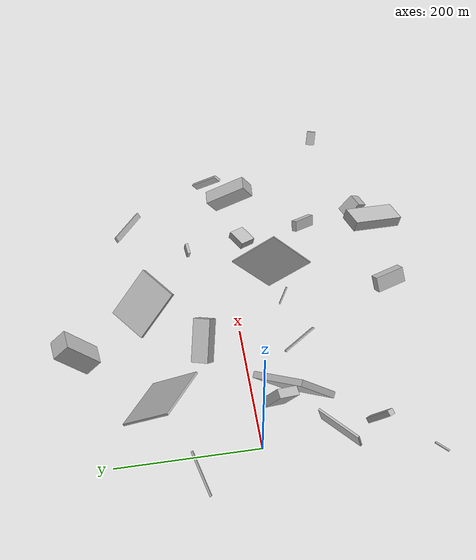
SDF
<sdf version="1.6">
 <world name="default">
  <scene>
   <sky><clouds><speed>12</speed></clouds></sky>
   <ambient>0.4 0.4 0.4 1</ambient>
   <background>0.7 0.7 0.7 1</background>
   <shadows>1</shadows>
  </scene>
  <gravity>0 0 -9.8066</gravity>
  <magnetic_field>6e-06 2.3e-05 -4.2e-05</magnetic_field>
  <physics default="0" name="default_physics" type="ode">
   <ode>
    <solver>
     <type>quick</type>
     <iters>10</iters>
     <sor>1.0</sor>
     <use_dynamic_moi_rescaling>0</use_dynamic_moi_rescaling>
    </solver>
    <constraints>
     <cfm>0</cfm>
     <erp>0.2</erp>
     <contact_max_correcting_vel>100</contact_max_correcting_vel>
     <contact_surface_layer>0.001</contact_surface_layer>
    </constraints>
   </ode>
   <max_step_size>0.004</max_step_size>
   <real_time_factor>1</real_time_factor>
   <real_time_update_rate>250</real_time_update_rate>
  </physics>
  <light name="sun" type="directional">
   <pose>0 0 10 0 0 0</pose>
   <diffuse>0.8 0.8 0.8 1</diffuse>
   <specular>0.2 0.2 0.2 1</specular>
   <attenuation>
    <range>1000</range>
    <constant>0.9</constant>
    <linear>0.01</linear>
    <quadratic>0.001</quadratic>
   </attenuation>
   <direction>-0.5 0.1 -0.9</direction>
  </light>
  <model name="building_1">
   <static>0</static>
   <pose>160.1165467990206 68.87043539688312 46.89103749658003 1.3285939353159029 -0.7301867774618009 -0.22986514630853305</pose>
   <link name="link">
    <gravity>0</gravity>
    <pose>0 0 12.0 0 0 0</pose>
    <collision name="collision"><geometry><box><size>61 26 24</size></box></geometry></collision>
    <visual name="visual">
     <cast_shadows>0</cast_shadows>
     <geometry><box><size>61 26 24</size></box></geometry>
     <material>
      <script>
       <uri>model://HANNAS_wall/materials/scripts</uri>
       <uri>model://HANNAS_wall/materials/textures</uri>
       <name>vrc/HANNAS_wall</name>
      </script>
     </material>
    </visual>
   </link>
  </model>
  <model name="building_2">
   <static>0</static>
   <pose>279.2148079015359 -201.69801258769922 115.26990280224206 -0.05930426984756887 0.2903821086181168 -1.2845892986862015</pose>
   <link name="link">
    <gravity>0</gravity>
    <pose>0 0 7.5 0 0 0</pose>
    <collision name="collision"><geometry><box><size>77 31 15</size></box></geometry></collision>
    <visual name="visual">
     <cast_shadows>0</cast_shadows>
     <geometry><box><size>77 31 15</size></box></geometry>
     <material>
      <script>
       <uri>model://HANNAS_wall/materials/scripts</uri>
       <uri>model://HANNAS_wall/materials/textures</uri>
       <name>vrc/HANNAS_wall</name>
      </script>
     </material>
    </visual>
   </link>
  </model>
  <model name="building_3">
   <static>0</static>
   <pose>159.5203059757197 -78.49606006658985 18.749224850001085 2.2932887428029067 -0.2470674348100772 -1.0514983323943283</pose>
   <link name="link">
    <gravity>0</gravity>
    <pose>0 0 1.0 0 0 0</pose>
    <collision name="collision"><geometry><box><size>53 8 2</size></box></geometry></collision>
    <visual name="visual">
     <cast_shadows>0</cast_shadows>
     <geometry><box><size>53 8 2</size></box></geometry>
     <material>
      <script>
       <uri>model://HANNAS_wall/materials/scripts</uri>
       <uri>model://HANNAS_wall/materials/textures</uri>
       <name>vrc/HANNAS_wall</name>
      </script>
     </material>
    </visual>
   </link>
  </model>
  <model name="building_4">
   <static>0</static>
   <pose>277.0380066606314 108.08995951245579 40.6746956114759 -2.3139507642230135 -0.19611090489832625 0.7014184748416624</pose>
   <link name="link">
    <gravity>0</gravity>
    <pose>0 0 40.0 0 0 0</pose>
    <collision name="collision"><geometry><box><size>59 7 80</size></box></geometry></collision>
    <visual name="visual">
     <cast_shadows>0</cast_shadows>
     <geometry><box><size>59 7 80</size></box></geometry>
     <material>
      <script>
       <uri>model://HANNAS_wall/materials/scripts</uri>
       <uri>model://HANNAS_wall/materials/textures</uri>
       <name>vrc/HANNAS_wall</name>
      </script>
     </material>
    </visual>
   </link>
  </model>
  <model name="building_5">
   <static>0</static>
   <pose>365.73317975480563 -18.665505776969084 13.070392997884396 -1.7748417487516686 0.07115214827995058 -2.6054754515912246</pose>
   <link name="link">
    <gravity>0</gravity>
    <pose>0 0 12.5 0 0 0</pose>
    <collision name="collision"><geometry><box><size>29 11 25</size></box></geometry></collision>
    <visual name="visual">
     <cast_shadows>0</cast_shadows>
     <geometry><box><size>29 11 25</size></box></geometry>
     <material>
      <script>
       <uri>model://HANNAS_wall/materials/scripts</uri>
       <uri>model://HANNAS_wall/materials/textures</uri>
       <name>vrc/HANNAS_wall</name>
      </script>
     </material>
    </visual>
   </link>
  </model>
  <model name="building_6">
   <static>0</static>
   <pose>458.7847118919206 -21.70031995184931 33.27693621267956 1.788165845553043 -0.5519019244276538 -1.7569297192931248</pose>
   <link name="link">
    <gravity>0</gravity>
    <pose>0 0 10.5 0 0 0</pose>
    <collision name="collision"><geometry><box><size>67 28 21</size></box></geometry></collision>
    <visual name="visual">
     <cast_shadows>0</cast_shadows>
     <geometry><box><size>67 28 21</size></box></geometry>
     <material>
      <script>
       <uri>model://HANNAS_wall/materials/scripts</uri>
       <uri>model://HANNAS_wall/materials/textures</uri>
       <name>vrc/HANNAS_wall</name>
      </script>
     </material>
    </visual>
   </link>
  </model>
  <model name="building_7">
   <static>0</static>
   <pose>-40.876533607817 86.29795836651692 28.377055840085532 -2.5025358156552797 0.8016722359618489 -0.7808692468582902</pose>
   <link name="link">
    <gravity>0</gravity>
    <pose>0 0 1.5 0 0 0</pose>
    <collision name="collision"><geometry><box><size>2 63 3</size></box></geometry></collision>
    <visual name="visual">
     <cast_shadows>0</cast_shadows>
     <geometry><box><size>2 63 3</size></box></geometry>
     <material>
      <script>
       <uri>model://HANNAS_wall/materials/scripts</uri>
       <uri>model://HANNAS_wall/materials/textures</uri>
       <name>vrc/HANNAS_wall</name>
      </script>
     </material>
    </visual>
   </link>
  </model>
  <model name="building_8">
   <static>0</static>
   <pose>353.50089481447424 59.31059171152511 16.964097756739513 1.5940710545189296 -0.4418369607286994 0.15842009398209242</pose>
   <link name="link">
    <gravity>0</gravity>
    <pose>0 0 2.0 0 0 0</pose>
    <collision name="collision"><geometry><box><size>16 19 4</size></box></geometry></collision>
    <visual name="visual">
     <cast_shadows>0</cast_shadows>
     <geometry><box><size>16 19 4</size></box></geometry>
     <material>
      <script>
       <uri>model://HANNAS_wall/materials/scripts</uri>
       <uri>model://HANNAS_wall/materials/textures</uri>
       <name>vrc/HANNAS_wall</name>
      </script>
     </material>
    </visual>
   </link>
  </model>
  <model name="building_9">
   <static>0</static>
   <pose>311.8666914323281 -173.74385039163144 103.67761383684056 0.7176548363751946 -0.23872495111786582 0.49191703901377143</pose>
   <link name="link">
    <gravity>0</gravity>
    <pose>0 0 13.5 0 0 0</pose>
    <collision name="collision"><geometry><box><size>18 24 27</size></box></geometry></collision>
    <visual name="visual">
     <cast_shadows>0</cast_shadows>
     <geometry><box><size>18 24 27</size></box></geometry>
     <material>
      <script>
       <uri>model://HANNAS_wall/materials/scripts</uri>
       <uri>model://HANNAS_wall/materials/textures</uri>
       <name>vrc/HANNAS_wall</name>
      </script>
     </material>
    </visual>
   </link>
  </model>
  <model name="building_10">
   <static>0</static>
   <pose>245.79744965909856 -71.14905408632073 14.197179085214351 0.5143165054649868 -0.8328007508449095 -0.7433514378001362</pose>
   <link name="link">
    <gravity>0</gravity>
    <pose>0 0 1.5 0 0 0</pose>
    <collision name="collision"><geometry><box><size>27 2 3</size></box></geometry></collision>
    <visual name="visual">
     <cast_shadows>0</cast_shadows>
     <geometry><box><size>27 2 3</size></box></geometry>
     <material>
      <script>
       <uri>model://HANNAS_wall/materials/scripts</uri>
       <uri>model://HANNAS_wall/materials/textures</uri>
       <name>vrc/HANNAS_wall</name>
      </script>
     </material>
    </visual>
   </link>
  </model>
  <model name="building_11">
   <static>0</static>
   <pose>159.4988535581566 244.30072497581358 40.120761537084675 -0.100432081249928 0.8556353628195631 -1.5304868915395726</pose>
   <link name="link">
    <gravity>0</gravity>
    <pose>0 0 14.0 0 0 0</pose>
    <collision name="collision"><geometry><box><size>61 30 28</size></box></geometry></collision>
    <visual name="visual">
     <cast_shadows>0</cast_shadows>
     <geometry><box><size>61 30 28</size></box></geometry>
     <material>
      <script>
       <uri>model://HANNAS_wall/materials/scripts</uri>
       <uri>model://HANNAS_wall/materials/textures</uri>
       <name>vrc/HANNAS_wall</name>
      </script>
     </material>
    </visual>
   </link>
  </model>
  <model name="building_12">
   <static>0</static>
   <pose>-51.779734609221066 -228.33852687330676 31.546906091834444 2.696736357048746 -0.20183266006919656 0.8779202080913617</pose>
   <link name="link">
    <gravity>0</gravity>
    <pose>0 0 4.5 0 0 0</pose>
    <collision name="collision"><geometry><box><size>21 2 9</size></box></geometry></collision>
    <visual name="visual">
     <cast_shadows>0</cast_shadows>
     <geometry><box><size>21 2 9</size></box></geometry>
     <material>
      <script>
       <uri>model://HANNAS_wall/materials/scripts</uri>
       <uri>model://HANNAS_wall/materials/textures</uri>
       <name>vrc/HANNAS_wall</name>
      </script>
     </material>
    </visual>
   </link>
  </model>
  <model name="building_13">
   <static>0</static>
   <pose>33.63468879328431 -78.56569889626333 73.6349217662959 -2.270011559818644 0.861918395971163 -1.2725295731066637</pose>
   <link name="link">
    <gravity>0</gravity>
    <pose>0 0 40.0 0 0 0</pose>
    <collision name="collision"><geometry><box><size>80 9 80</size></box></geometry></collision>
    <visual name="visual">
     <cast_shadows>0</cast_shadows>
     <geometry><box><size>80 9 80</size></box></geometry>
     <material>
      <script>
       <uri>model://HANNAS_wall/materials/scripts</uri>
       <uri>model://HANNAS_wall/materials/textures</uri>
       <name>vrc/HANNAS_wall</name>
      </script>
     </material>
    </visual>
   </link>
  </model>
  <model name="building_14">
   <static>0</static>
   <pose>262.4571893674575 -55.55485748057497 74.37326751015907 1.6499058930601396 -0.7453860560898355 -1.7647473808158165</pose>
   <link name="link">
    <gravity>0</gravity>
    <pose>0 0 1.0 0 0 0</pose>
    <collision name="collision"><geometry><box><size>80 80 2</size></box></geometry></collision>
    <visual name="visual">
     <cast_shadows>0</cast_shadows>
     <geometry><box><size>80 80 2</size></box></geometry>
     <material>
      <script>
       <uri>model://HANNAS_wall/materials/scripts</uri>
       <uri>model://HANNAS_wall/materials/textures</uri>
       <name>vrc/HANNAS_wall</name>
      </script>
     </material>
    </visual>
   </link>
  </model>
  <model name="building_15">
   <static>0</static>
   <pose>235.4612828087036 -229.3085813687533 19.862510332109586 -0.5003006305440411 -0.005773652246164289 -1.231963529376986</pose>
   <link name="link">
    <gravity>0</gravity>
    <pose>0 0 11.5 0 0 0</pose>
    <collision name="collision"><geometry><box><size>45 14 23</size></box></geometry></collision>
    <visual name="visual">
     <cast_shadows>0</cast_shadows>
     <geometry><box><size>45 14 23</size></box></geometry>
     <material>
      <script>
       <uri>model://HANNAS_wall/materials/scripts</uri>
       <uri>model://HANNAS_wall/materials/textures</uri>
       <name>vrc/HANNAS_wall</name>
      </script>
     </material>
    </visual>
   </link>
  </model>
  <model name="building_16">
   <static>0</static>
   <pose>359.9287547476573 143.63338343900523 74.5718415603003 0.4564433649392749 -0.8463438703934568 0.7275195290825461</pose>
   <link name="link">
    <gravity>0</gravity>
    <pose>0 0 1.5 0 0 0</pose>
    <collision name="collision"><geometry><box><size>8 80 3</size></box></geometry></collision>
    <visual name="visual">
     <cast_shadows>0</cast_shadows>
     <geometry><box><size>8 80 3</size></box></geometry>
     <material>
      <script>
       <uri>model://HANNAS_wall/materials/scripts</uri>
       <uri>model://HANNAS_wall/materials/textures</uri>
       <name>vrc/HANNAS_wall</name>
      </script>
     </material>
    </visual>
   </link>
  </model>
  <model name="building_17">
   <static>0</static>
   <pose>24.18069801796984 -81.41579187222462 29.383758136591723 1.5784379286179429 -0.30368633486045177 -0.8696110444245272</pose>
   <link name="link">
    <gravity>0</gravity>
    <pose>0 0 33.0 0 0 0</pose>
    <collision name="collision"><geometry><box><size>3 36 66</size></box></geometry></collision>
    <visual name="visual">
     <cast_shadows>0</cast_shadows>
     <geometry><box><size>3 36 66</size></box></geometry>
     <material>
      <script>
       <uri>model://HANNAS_wall/materials/scripts</uri>
       <uri>model://HANNAS_wall/materials/textures</uri>
       <name>vrc/HANNAS_wall</name>
      </script>
     </material>
    </visual>
   </link>
  </model>
  <model name="building_18">
   <static>0</static>
   <pose>-14.639184027611906 -30.036820631477745 141.888194439312 1.1395600701280717 0.3837260835713684 -2.9615307117312666</pose>
   <link name="link">
    <gravity>0</gravity>
    <pose>0 0 15.0 0 0 0</pose>
    <collision name="collision"><geometry><box><size>12 34 30</size></box></geometry></collision>
    <visual name="visual">
     <cast_shadows>0</cast_shadows>
     <geometry><box><size>12 34 30</size></box></geometry>
     <material>
      <script>
       <uri>model://HANNAS_wall/materials/scripts</uri>
       <uri>model://HANNAS_wall/materials/textures</uri>
       <name>vrc/HANNAS_wall</name>
      </script>
     </material>
    </visual>
   </link>
  </model>
  <model name="building_19">
   <static>0</static>
   <pose>402.0204657617741 -141.86320683700148 172.23044479041369 1.4928789656123902 0.956433300606507 2.8101652345052144</pose>
   <link name="link">
    <gravity>0</gravity>
    <pose>0 0 6.0 0 0 0</pose>
    <collision name="collision"><geometry><box><size>19 6 12</size></box></geometry></collision>
    <visual name="visual">
     <cast_shadows>0</cast_shadows>
     <geometry><box><size>19 6 12</size></box></geometry>
     <material>
      <script>
       <uri>model://HANNAS_wall/materials/scripts</uri>
       <uri>model://HANNAS_wall/materials/textures</uri>
       <name>vrc/HANNAS_wall</name>
      </script>
     </material>
    </visual>
   </link>
  </model>
  <model name="building_20">
   <static>0</static>
   <pose>34.67037766133213 155.9581094818485 91.49708462891535 0.2585410748867599 -0.8472346903864333 0.7841639074317144</pose>
   <link name="link">
    <gravity>0</gravity>
    <pose>0 0 40.0 0 0 0</pose>
    <collision name="collision"><geometry><box><size>3 80 80</size></box></geometry></collision>
    <visual name="visual">
     <cast_shadows>0</cast_shadows>
     <geometry><box><size>3 80 80</size></box></geometry>
     <material>
      <script>
       <uri>model://HANNAS_wall/materials/scripts</uri>
       <uri>model://HANNAS_wall/materials/textures</uri>
       <name>vrc/HANNAS_wall</name>
      </script>
     </material>
    </visual>
   </link>
  </model>
  <model name="building_21">
   <static>0</static>
   <pose>6.247262579931536 -156.0971933616712 39.79606869210207 2.8081427499438316 -0.9630714357087904 -2.3028265981517886</pose>
   <link name="link">
    <gravity>0</gravity>
    <pose>0 0 4.0 0 0 0</pose>
    <collision name="collision"><geometry><box><size>49 9 8</size></box></geometry></collision>
    <visual name="visual">
     <cast_shadows>0</cast_shadows>
     <geometry><box><size>49 9 8</size></box></geometry>
     <material>
      <script>
       <uri>model://HANNAS_wall/materials/scripts</uri>
       <uri>model://HANNAS_wall/materials/textures</uri>
       <name>vrc/HANNAS_wall</name>
      </script>
     </material>
    </visual>
   </link>
  </model>
  <model name="building_22">
   <static>0</static>
   <pose>360.4360875033168 -108.30829239821772 35.99999224661876 1.965623681540737 0.3435674878155965 0.7895461607730676</pose>
   <link name="link">
    <gravity>0</gravity>
    <pose>0 0 21.0 0 0 0</pose>
    <collision name="collision"><geometry><box><size>8 16 42</size></box></geometry></collision>
    <visual name="visual">
     <cast_shadows>0</cast_shadows>
     <geometry><box><size>8 16 42</size></box></geometry>
     <material>
      <script>
       <uri>model://HANNAS_wall/materials/scripts</uri>
       <uri>model://HANNAS_wall/materials/textures</uri>
       <name>vrc/HANNAS_wall</name>
      </script>
     </material>
    </visual>
   </link>
  </model>
  <model name="building_23">
   <static>0</static>
   <pose>479.7982584310067 14.978684099648863 36.10338813970035 -2.8128537031733822 -0.7710238533669521 -2.356577557487617</pose>
   <link name="link">
    <gravity>0</gravity>
    <pose>0 0 5.5 0 0 0</pose>
    <collision name="collision"><geometry><box><size>64 4 11</size></box></geometry></collision>
    <visual name="visual">
     <cast_shadows>0</cast_shadows>
     <geometry><box><size>64 4 11</size></box></geometry>
     <material>
      <script>
       <uri>model://HANNAS_wall/materials/scripts</uri>
       <uri>model://HANNAS_wall/materials/textures</uri>
       <name>vrc/HANNAS_wall</name>
      </script>
     </material>
    </visual>
   </link>
  </model>
 </world>
</sdf>
